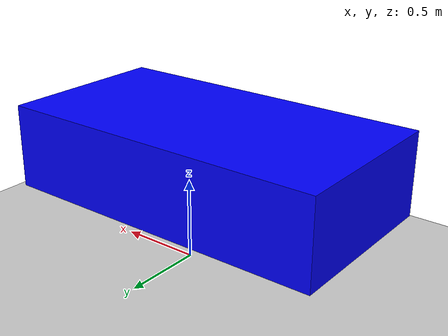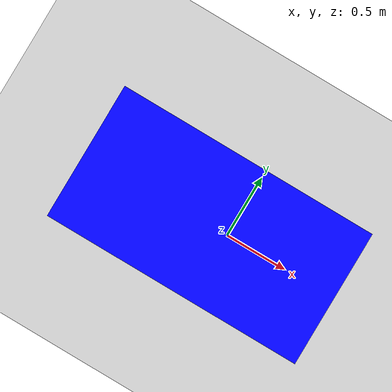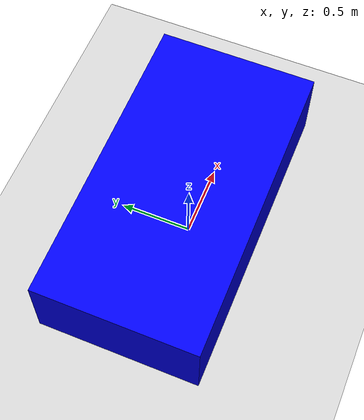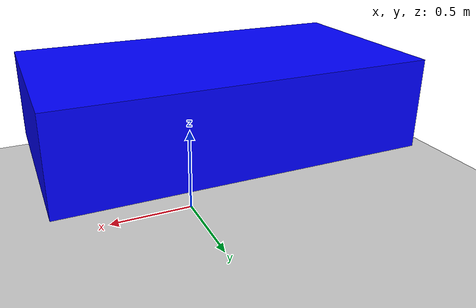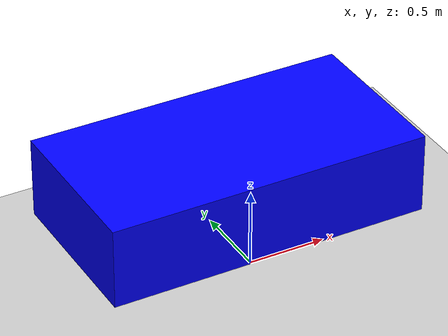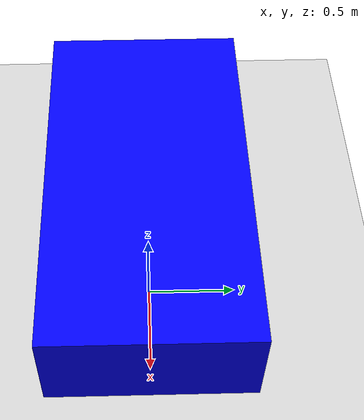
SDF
<?xml version="1.0" ?>
<sdf version="1.8">
  <world name="diff_drive">
    <physics name="1ms" type="ignored">
      <max_step_size>0.001</max_step_size>
      <real_time_factor>1.0</real_time_factor>
    </physics>

    <plugin
      filename="gz-sim-physics-system"
      name="gz::sim::systems::Physics">
    </plugin>
    <plugin
      filename="gz-sim-user-commands-system"
      name="gz::sim::systems::UserCommands">
    </plugin>
    <plugin
      filename="gz-sim-scene-broadcaster-system"
      name="gz::sim::systems::SceneBroadcaster">
    </plugin>

    <light type="directional" name="sun">
      <cast_shadows>true</cast_shadows>
      <pose>0 0 10 0 0 0</pose>
      <diffuse>0.8 0.8 0.8 1</diffuse>
      <specular>0.2 0.2 0.2 1</specular>
      <direction>-0.5 0.1 -0.9</direction>
    </light>

    <model name="ground_plane">
      <static>true</static>
      <link name="link">
        <collision name="collision">
          <geometry>
            <plane>
              <normal>0 0 1</normal>
              <size>100 100</size>
            </plane>
          </geometry>
        </collision>
        <visual name="visual">
          <geometry>
            <plane>
              <normal>0 0 1</normal>
              <size>100 100</size>
            </plane>
          </geometry>
          <material>
            <ambient>0.8 0.8 0.8 1</ambient>
            <diffuse>0.8 0.8 0.8 1</diffuse>
          </material>
        </visual>
      </link>
    </model>

    <model name="vehicle_blue">
      <pose>0 0 0.5 0 0 0</pose>
      <link name="chassis">
        <pose>-0.151427 0 0.175 0 0 0</pose>
        <inertial>
          <mass>1.14395</mass>
          <inertia>
            <ixx>0.095329</ixx>
            <ixy>0</ixy>
            <ixz>0</ixz>
            <iyy>0.381317</iyy>
            <iyz>0</iyz>
            <izz>0.476646</izz>
          </inertia>
        </inertial>
        <visual name="visual">
          <geometry>
            <box>
              <size>2.01428 1.0542 0.506378</size>
            </box>
          </geometry>
          <material>
            <ambient>0.0 0.0 1.0 1</ambient>
            <diffuse>0.0 0.0 1.0 1</diffuse>
          </material>
        </visual>
        <collision name="collision">
          <geometry>
            <box>
              <size>2.01428 1.0542 0.506378</size>
            </box>
          </geometry>
        </collision>
      </link>
    </model>
  </world>
</sdf>
